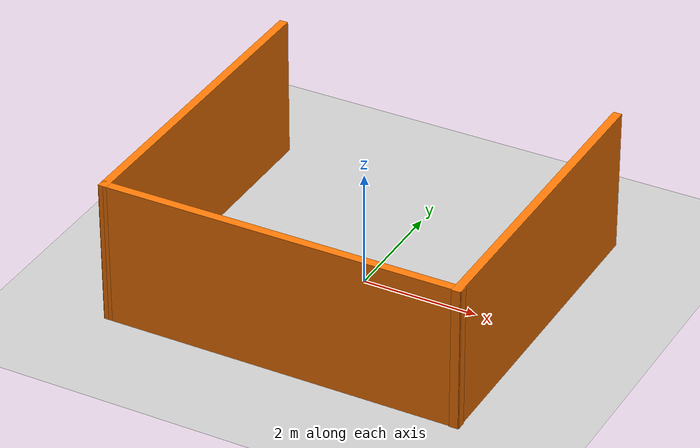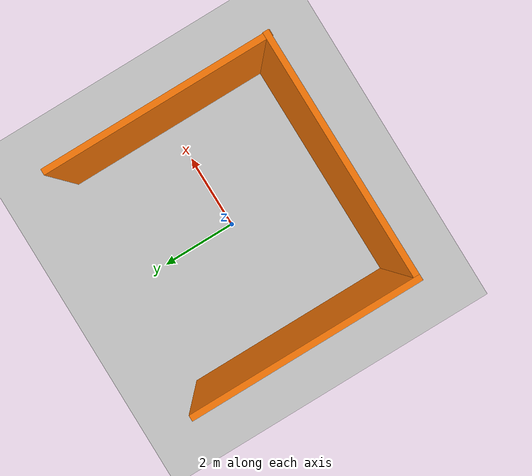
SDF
<sdf version="1.6">
 <world name="default">
  <light name="sun" type="directional">
   <pose>0 0 10 0 -0 0</pose>
   <diffuse>0.8 0.8 0.8 1</diffuse>
   <specular>0.1 0.1 0.1 1</specular>
   <attenuation>
    <range>1000</range>
    <constant>0.9</constant>
    <linear>0.01</linear>
    <quadratic>0.001</quadratic>
   </attenuation>
   <direction>-0.5 0.5 -1</direction>
  </light>
  <model name="ground_plane">
   <static>1</static>
   <link name="link">
    <collision name="collision">
     <geometry><plane><normal>0 0 1</normal><size>100 100</size></plane></geometry>
     <surface><friction><ode><mu>100</mu><mu2>50</mu2></ode></friction></surface>
    </collision>
    <visual name="visual">
     <cast_shadows>0</cast_shadows>
     <geometry><plane><normal>0 0 1</normal><size>100 100</size></plane></geometry>
     <material>
      <script><uri>file://media/materials/scripts/gazebo.material</uri><name>Gazebo/Grey</name></script>
     </material>
    </visual>
   </link>
  </model>
  <gravity>0 0 -9.8</gravity>
  <magnetic_field>6e-06 2.3e-05 -4.2e-05</magnetic_field>
  <atmosphere type="adiabatic"/>
  <physics name="default_physics" default="0" type="ode">
   <max_step_size>0.001</max_step_size>
   <real_time_factor>1</real_time_factor>
   <real_time_update_rate>1000</real_time_update_rate>
  </physics>
  <scene><ambient>0.4 0.4 0.4 1</ambient><background>0.7 0.7 0.7 1</background><shadows>1</shadows></scene>
  <spherical_coordinates>
   <surface_model>EARTH_WGS84</surface_model>
   <latitude_deg>0</latitude_deg>
   <longitude_deg>0</longitude_deg>
   <elevation>0</elevation>
   <heading_deg>0</heading_deg>
  </spherical_coordinates>
  <model name="Wall1">
   <pose>0.00074 0.024417 0 0 -0 0</pose>
   <link name="Wall_15">
    <collision name="Wall_15_Collision">
     <geometry><box><size>5.75 0.15 2.5</size></box></geometry>
     <pose>0 0 1.25 0 -0 0</pose>
    </collision>
    <visual name="Wall_15_Visual">
     <pose>0 0 1.25 0 -0 0</pose>
     <geometry><box><size>5.75 0.15 2.5</size></box></geometry>
     <material>
      <script><uri>file://media/materials/scripts/gazebo.material</uri><name>Gazebo/Grey</name></script>
      <ambient>0.996078 0.47451 0.0196078 1</ambient>
     </material>
    </visual>
    <pose>-3.05826 0.000107 0 0 0 -1.5708</pose>
   </link>
   <link name="Wall_16">
    <collision name="Wall_16_Collision">
     <geometry><box><size>6.25981 0.15 2.5</size></box></geometry>
     <pose>0 0 1.25 0 -0 0</pose>
    </collision>
    <visual name="Wall_16_Visual">
     <pose>0 0 1.25 0 -0 0</pose>
     <geometry><box><size>6.25981 0.15 2.5</size></box></geometry>
     <material>
      <script><uri>file://media/materials/scripts/gazebo.material</uri><name>Gazebo/Grey</name></script>
      <ambient>0.996078 0.47451 0.0196078 1</ambient>
     </material>
    </visual>
    <pose>0.003155 -2.7912 0 0 -0 0.002847</pose>
   </link>
   <link name="Wall_17">
    <collision name="Wall_17_Collision">
     <geometry><box><size>5.6999 0.15 2.5</size></box></geometry>
     <pose>0 0 1.25 0 -0 0</pose>
    </collision>
    <visual name="Wall_17_Visual">
     <pose>0 0 1.25 0 -0 0</pose>
     <geometry><box><size>5.6999 0.15 2.5</size></box></geometry>
     <material>
      <script><uri>file://media/materials/scripts/gazebo.material</uri><name>Gazebo/Grey</name></script>
      <ambient>0.996078 0.47451 0.0196078 1</ambient>
     </material>
    </visual>
    <pose>3.04464 -0.022551 0 0 -0 1.57022</pose>
   </link>
   <static>1</static>
  </model>
 </world>
</sdf>
